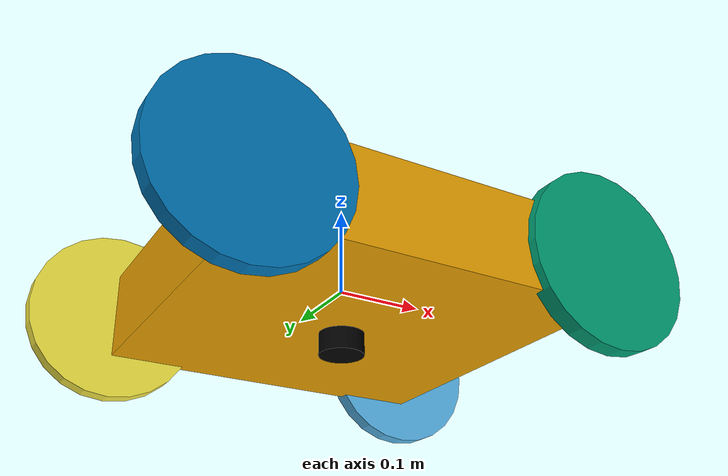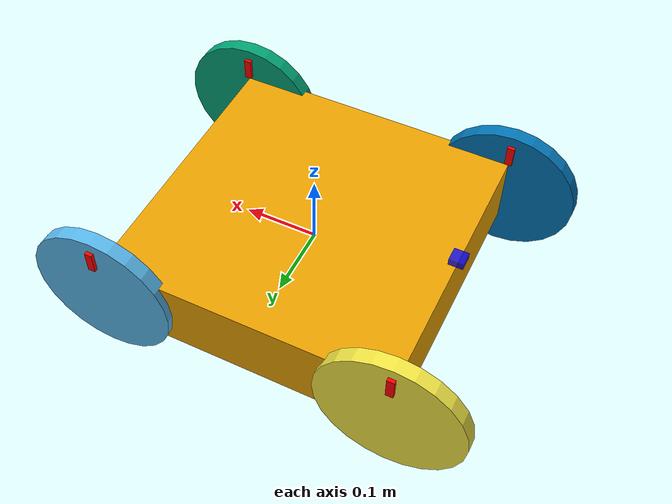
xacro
<?xml version="1.0"?>
<robot xmlns:xacro="http://www.ros.org/wiki/xacro" name="myfirst">

  <!-- 控制器配置可通过 xacro 参数替换(默认使用 myrobot_gazebo 自己的配置,
       其中关节名和轮距参数与 URDF 几何一致)。
       以后接实车硬件时,用 controller_yaml:=... 换成实车专用配置即可 -->
  <xacro:arg name="controller_yaml" default="$(find myrobot_gazebo)/config/ros2_controller.yaml"/>

  <xacro:arg name="kinematic_move" default="false"/>

  <link name="base_link">
    <visual>
      <geometry>
        <!-- 长方体的长宽高 -->
        <box size="0.4 0.4 0.1" />
      </geometry>
      <origin xyz="0 0 0" rpy="0 0 0" />
    </visual>
    <collision>
  <geometry><box size="0.4 0.4 0.1"/></geometry>
</collision>
<inertial>
  <mass value="10.0"/>
  <inertia ixx="0.542" ixy="0" ixz="0" iyy="0.542" iyz="0" izz="1.067"/>
</inertial>
  </link>

  <link name="left_front_wheel">
    <visual>
      <!-- 只管朝向:圆柱默认轴 z,转 90° 让轮轴沿 y -->
      <origin xyz="0 0 0" rpy="${pi/2} 0 0"/>
      <geometry><cylinder radius="0.1" length="0.02"/></geometry>
    </visual>
    <!-- 转动标记:纯色圆柱绕轴转看不出来,贴个红块让旋转可见 -->
    <visual>
      <origin xyz="0 0.012 0.07" rpy="0 0 0"/>
      <geometry><box size="0.01 0.006 0.03"/></geometry>
      <material name="red"/>
    </visual>
    <collision>
  <origin xyz="0 0 0" rpy="${pi/2} 0 0"/>
  <geometry><cylinder radius="0.1" length="0.02"/></geometry>
</collision>
<inertial>
  <mass value="1.0"/>
  <inertia ixx="0.00253" ixy="0" ixz="0" iyy="0.005" iyz="0" izz="0.00253"/>
</inertial>
  </link>

  <!-- 没有 joint 就没有 TF,RViz 会把轮子整个隐藏 -->
  <joint name="left_front_wheel_joint" type="continuous">
    <parent link="base_link"/>
    <child link="left_front_wheel"/>
    <origin xyz="0.2 0.2 0" rpy="0 0 0"/>
    <axis xyz="0 1 0"/>
  </joint>

  <!-- 麦轮式顺滑转弯的关键:滚动方向抓地(驱动),侧向低摩擦(允许横滑) -->
  <gazebo reference="left_front_wheel">
    <mu1>1.0</mu1>
    <mu2>0.1</mu2>
    <fdir1>1 0 0</fdir1>
  </gazebo>

  <link name="right_front_wheel">
    <visual>
      <!-- 只管朝向:圆柱默认轴 z,转 90° 让轮轴沿 y -->
      <origin xyz="0 0 0" rpy="${pi/2} 0 0"/>
      <geometry><cylinder radius="0.1" length="0.02"/></geometry>
    </visual>
    <!-- 转动标记:纯色圆柱绕轴转看不出来,贴个红块让旋转可见 -->
    <visual>
      <origin xyz="0 0.012 0.07" rpy="0 0 0"/>
      <geometry><box size="0.01 0.006 0.03"/></geometry>
      <material name="red"/>
    </visual>
    <collision>
  <origin xyz="0 0 0" rpy="${pi/2} 0 0"/>
  <geometry><cylinder radius="0.1" length="0.02"/></geometry>
</collision>
<inertial>
  <mass value="1.0"/>
  <inertia ixx="0.00253" ixy="0" ixz="0" iyy="0.005" iyz="0" izz="0.00253"/>
</inertial>
  </link>

  <!-- 没有 joint 就没有 TF,RViz 会把轮子整个隐藏 -->
  <joint name="right_front_wheel_joint" type="continuous">
    <parent link="base_link"/>
    <child link="right_front_wheel"/>
    <origin xyz="0.2 -0.2 0" rpy="0 0 0"/>
    <axis xyz="0 1 0"/>
  </joint>

  <gazebo reference="right_front_wheel">
    <mu1>1.0</mu1>
    <mu2>0.1</mu2>
    <fdir1>1 0 0</fdir1>
  </gazebo>

  <link name="left_back_wheel">
    <visual>
      <!-- 只管朝向:圆柱默认轴 z,转 90° 让轮轴沿 y -->
      <origin xyz="0 0 0" rpy="${pi/2} 0 0"/>
      <geometry><cylinder radius="0.1" length="0.02"/></geometry>
    </visual>
    <!-- 转动标记:纯色圆柱绕轴转看不出来,贴个红块让旋转可见 -->
    <visual>
      <origin xyz="0 0.012 0.07" rpy="0 0 0"/>
      <geometry><box size="0.01 0.006 0.03"/></geometry>
      <material name="red"/>
    </visual>
    <collision>
  <origin xyz="0 0 0" rpy="${pi/2} 0 0"/>
  <geometry><cylinder radius="0.1" length="0.02"/></geometry>
</collision>
<inertial>
  <mass value="1.0"/>
  <inertia ixx="0.00253" ixy="0" ixz="0" iyy="0.005" iyz="0" izz="0.00253"/>
</inertial>
  </link>

  <!-- 没有 joint 就没有 TF,RViz 会把轮子整个隐藏 -->
  <joint name="left_back_wheel_joint" type="continuous">
    <parent link="base_link"/>
    <child link="left_back_wheel"/>
    <origin xyz="-0.2 0.2 0" rpy="0 0 0"/>
    <axis xyz="0 1 0"/>
  </joint>

  <gazebo reference="left_back_wheel">
    <mu1>1.0</mu1>
    <mu2>0.1</mu2>
    <fdir1>1 0 0</fdir1>
  </gazebo>

  <link name="right_back_wheel">
    <visual>
      <!-- 只管朝向:圆柱默认轴 z,转 90° 让轮轴沿 y -->
      <origin xyz="0 0 0" rpy="${pi/2} 0 0"/>
      <geometry><cylinder radius="0.1" length="0.02"/></geometry>
    </visual>
    <!-- 转动标记:纯色圆柱绕轴转看不出来,贴个红块让旋转可见 -->
    <visual>
      <origin xyz="0 0.012 0.07" rpy="0 0 0"/>
      <geometry><box size="0.01 0.006 0.03"/></geometry>
      <material name="red"/>
    </visual>
    <collision>
  <origin xyz="0 0 0" rpy="${pi/2} 0 0"/>
  <geometry><cylinder radius="0.1" length="0.02"/></geometry>
</collision>
<inertial>
  <mass value="1.0"/>
  <inertia ixx="0.00253" ixy="0" ixz="0" iyy="0.005" iyz="0" izz="0.00253"/>
</inertial>
  </link>

  <!-- 没有 joint 就没有 TF,RViz 会把轮子整个隐藏 -->
  <joint name="right_back_wheel_joint" type="continuous">
    <parent link="base_link"/>
    <child link="right_back_wheel"/>
    <origin xyz="-0.2 -0.2 0" rpy="0 0 0"/>
    <axis xyz="0 1 0"/>
  </joint>

  <gazebo reference="right_back_wheel">
    <mu1>1.0</mu1>
    <mu2>0.1</mu2>
    <fdir1>1 0 0</fdir1>
  </gazebo>

  <!-- 顶部统一定义材质,全局一次 -->
<material name="blue"><color rgba="0 0 1 0.8"/></material>
<material name="black"><color rgba="0 0 0 0.9"/></material>
<material name="red"><color rgba="1 0 0 1"/></material>

<!-- ============ IMU:一个小盒,装在底盘中心上方 ============ -->
<link name="imu_link">
  <visual>
    <geometry><box size="0.02 0.02 0.01"/></geometry>
    <material name="blue"/>
  </visual>
  <inertial>
  <mass value="0.01"/>
  <inertia ixx="4.2e-7" ixy="0" ixz="0" iyy="4.2e-7" iyz="0" izz="6.7e-7"/>
</inertial>
</link>
<joint name="imu_joint" type="fixed">
  <parent link="base_link"/>
  <child link="imu_link"/>
  <origin xyz="-0.2 0 0.06" rpy="0 0 0"/>   <!-- 这就是 IMU 的安装外参 -->
</joint>

<!-- ============ 激光雷达:一个扁圆柱,装在车头 ============ -->
<link name="laser_link">
  <visual>
    <geometry><cylinder radius="0.025" length="0.03"/></geometry>
    <material name="black"/>
  </visual>
  <inertial>
  <mass value="0.01"/>
  <inertia ixx="4.2e-7" ixy="0" ixz="0" iyy="4.2e-7" iyz="0" izz="6.7e-7"/>
</inertial>
</link>
<joint name="laser_joint" type="fixed">
    <parent link="base_link"/>
    <child link="laser_link"/>
    <origin xyz="0 0 -0.06" rpy="0 0 0"/>    <!-- 雷达安装位姿,必须与实物/仿真一致 -->
  </joint>

<ros2_control name="MyRobotGazeboSystem" type="system">   <!-- name 随意;type: system/sensor/actuator -->
  <hardware>
    <plugin>ign_ros2_control/IgnitionSystem</plugin>      <!-- Fortress 后端:gz 仿真关节 ⇄ ros2_control -->
  </hardware>

    <joint name="left_front_wheel_joint">
      <command_interface name="velocity">
        <param name="min">-1</param>
        <param name="max">1</param>
      </command_interface>
      <command_interface name="effort">
        <param name="min">-20</param>
        <param name="max">20</param>
      </command_interface>
      <state_interface name="position"/>
      <state_interface name="velocity"/>
    </joint>
    <joint name="right_front_wheel_joint">
      <command_interface name="velocity">
        <param name="min">-1</param>
        <param name="max">1</param>
      </command_interface>
      <command_interface name="effort">
        <param name="min">-20</param>
        <param name="max">20</param>
      </command_interface>
      <state_interface name="position"/>
      <state_interface name="velocity"/>
    </joint>
    <joint name="left_back_wheel_joint">
      <command_interface name="velocity">
        <param name="min">-1</param>
        <param name="max">1</param>
      </command_interface>
      <command_interface name="effort">
        <param name="min">-20</param>
        <param name="max">20</param>
      </command_interface>
      <state_interface name="position"/>
      <state_interface name="velocity"/>
    </joint>
    <joint name="right_back_wheel_joint">
      <command_interface name="velocity">
        <param name="min">-1</param>
        <param name="max">1</param>
      </command_interface>
      <command_interface name="effort">
        <param name="min">-20</param>
        <param name="max">20</param>
      </command_interface>
      <state_interface name="position"/>
      <state_interface name="velocity"/>
    </joint>

    <!-- IMU 声明进 ros2_control:gz_ros2_control 按名字找到模型里的 imu 传感器,
         把数据挂到这些 state_interface,由 imu_sensor_broadcaster 广播成 ROS 话题。
         (Fortress 的 Sensors 系统不直接发布 gz 侧 IMU 话题,必须走这条路) -->
    <sensor name="imu">
      <state_interface name="orientation.x"/>
      <state_interface name="orientation.y"/>
      <state_interface name="orientation.z"/>
      <state_interface name="orientation.w"/>
      <state_interface name="angular_velocity.x"/>
      <state_interface name="angular_velocity.y"/>
      <state_interface name="angular_velocity.z"/>
      <state_interface name="linear_acceleration.x"/>
      <state_interface name="linear_acceleration.y"/>
      <state_interface name="linear_acceleration.z"/>
    </sensor>
  </ros2_control>

<gazebo>
  <!-- Fortress/Humble 上的正确写法:filename 用包内系统插件名,不是 lib*.so -->
  <plugin filename="ign_ros2_control-system" name="ign_ros2_control::IgnitionROS2ControlPlugin">
    <parameters>$(arg controller_yaml)</parameters>
    <ros>
      <!-- 走护栏通道:cmd_vel_guard 订阅 /cmd_vel,过滤后发 /cmd_vel_safe 给控制器。
           不想要护栏时,把这里改回 /cmd_vel 即可直通 -->
      <remapping>/diff_drive_controller/cmd_vel_unstamped:=/cmd_vel_safe</remapping>
      <remapping>/diff_drive_controller/odom:=/odom</remapping>
    </ros>
  </plugin>

  <!-- 真值里程计:位姿/速度由物理引擎直接给出,不经轮子。
       用途:打滑检测(轮式 odom 会被打滑骗,gz 真值不会)、跟踪验证。
       话题 /model/myrobot/odometry,由 launch 里的 parameter_bridge 转 ROS -->
  <plugin filename="ignition-gazebo-odometry-publisher-system" name="gz::sim::systems::OdometryPublisher">
    <odom_publish_frequency>50</odom_publish_frequency>
  </plugin>
</gazebo>

<xacro:if value="$(arg kinematic_move)">
  <gazebo>
    <plugin filename="ignition-gazebo-velocity-control-system" name="ignition::gazebo::systems::VelocityControl"/>
  </gazebo>
</xacro:if>

<gazebo reference="laser_link">
  <!-- Fortress 只有 gpu_lidar(走 ogre2 渲染),没有 classic 的 CPU ray;
       数据走 gz-transport → 由 launch 里的 ros_gz_bridge 转成 ROS /scan -->
  <sensor name="laser" type="gpu_lidar">
    <pose>0 0 0 0 0 0</pose>
    <visualize>true</visualize>              <!-- 在 Gazebo 里画出红色扫描线 -->
    <update_rate>10</update_rate>            <!-- 每秒 10 帧扫描 -->
    <topic>/scan</topic>                     <!-- gz 侧话题名,直接对齐桥的另一端 -->
    <gz_frame_id>laser_link</gz_frame_id>    <!-- 消息 frame_id 用 link 名,不用默认的带模型前缀长名 -->
    <lidar>
      <scan>
        <horizontal>
          <samples>360</samples>             <!-- 一圈采 360 个点,约 1° 分辨率 -->
          <resolution>1</resolution>
          <min_angle>-3.1415926</min_angle>  <!-- -180°( REP-103:0° 朝 x,逆时针为正)-->
          <max_angle>3.1415926</max_angle>   <!-- +180°,即 360° 全向 -->
        </horizontal>
      </scan>
      <range>
        <min>0.12</min>                      <!-- 最小盲区(实物雷达贴脸测不到)-->
        <max>8.0</max>                       <!-- 最大量程 8 m -->
        <resolution>0.01</resolution>
      </range>
      <noise>
        <type>gaussian</type>
        <stddev>0.01</stddev>                <!-- 模拟测量噪声 -->
      </noise>
    </lidar>
  </sensor>
</gazebo>

<gazebo reference="imu_link">
  <!-- 最小化对照实验:剥到只剩必需项,排查哪个标签挡住了传感器创建 -->
  <sensor name="imu" type="imu">
    <update_rate>100</update_rate>
    <topic>/imu/data</topic>
  </sensor>
</gazebo>

</robot>
